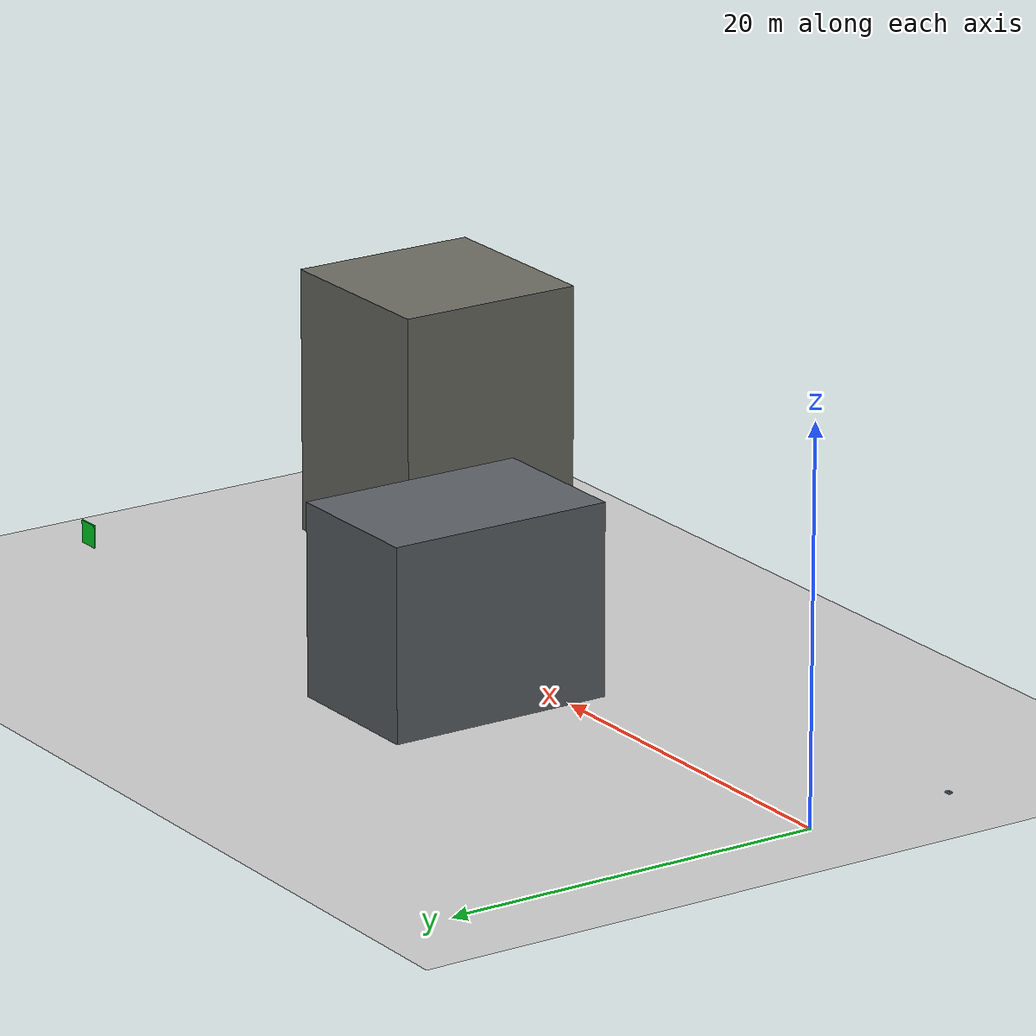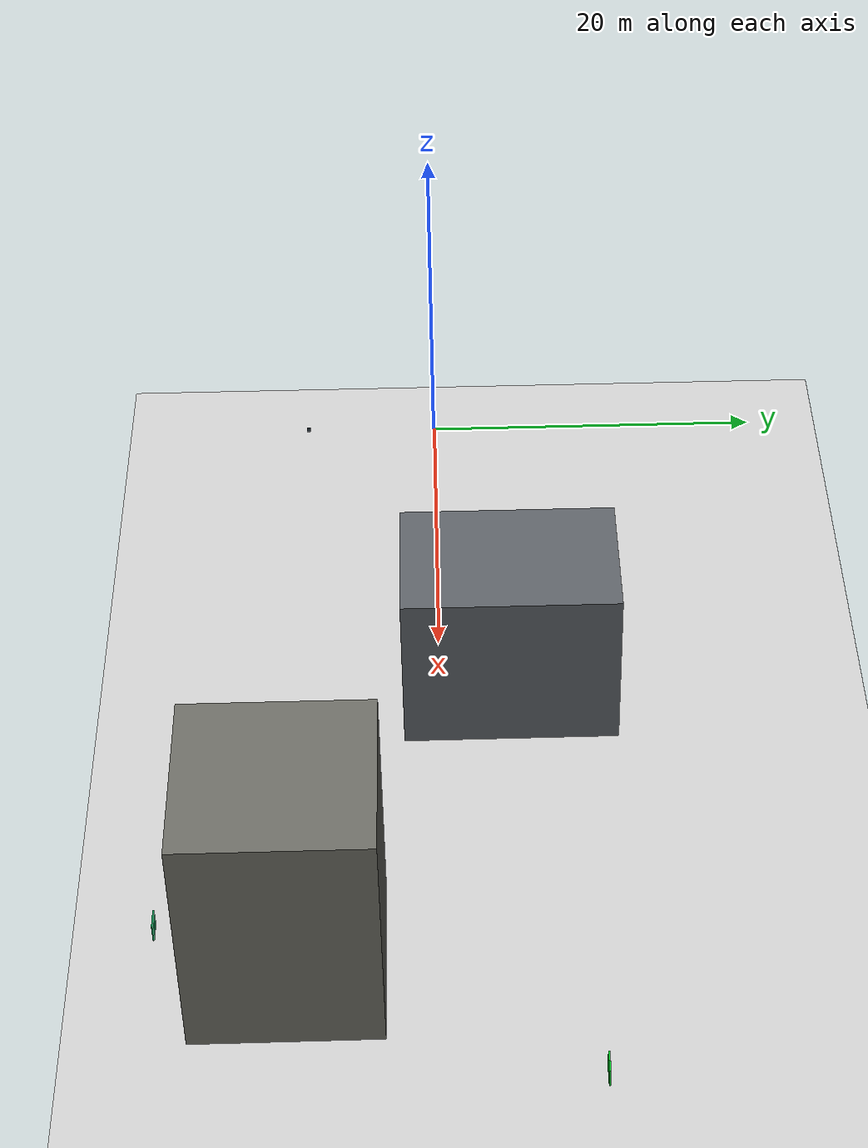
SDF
<?xml version="1.0"?>
<sdf version="1.10">
  <world name="jneo_urban_observation">
    <gravity>0 0 -9.80665</gravity>
    <scene>
      <ambient>0.38 0.40 0.42 1</ambient>
      <background>0.68 0.72 0.76 1</background>
      <shadows>true</shadows>
    </scene>
    <physics name="urban_physics" type="ode">
      <max_step_size>0.004</max_step_size>
      <real_time_factor>1.0</real_time_factor>
    </physics>
    <light name="sun_low" type="directional">
      <diffuse>0.8 0.76 0.65 1</diffuse>
      <direction>-0.65 0.1 -1</direction>
    </light>
    <model name="ground">
      <static>true</static>
      <link name="ground_link">
        <collision name="collision">
          <geometry>
            <plane>
              <normal>0 0 1</normal>
              <size>260 260</size>
            </plane>
          </geometry>
        </collision>
        <visual name="visual">
          <geometry>
            <plane>
              <normal>0 0 1</normal>
              <size>260 260</size>
            </plane>
          </geometry>
        </visual>
      </link>
    </model>
    <model name="building_block_a">
      <pose>24 4 5 0 0 0</pose>
      <static>true</static>
      <link name="block">
        <collision name="collision">
          <geometry><box><size>8 12 10</size></box></geometry>
        </collision>
        <visual name="visual">
          <geometry><box><size>8 12 10</size></box></geometry>
          <material><ambient>0.36 0.38 0.40 1</ambient><diffuse>0.36 0.38 0.40 1</diffuse></material>
        </visual>
      </link>
    </model>
    <model name="building_block_b">
      <pose>44 -8 7 0 0 0</pose>
      <static>true</static>
      <link name="block">
        <collision name="collision">
          <geometry><box><size>10 10 14</size></box></geometry>
        </collision>
        <visual name="visual">
          <geometry><box><size>10 10 14</size></box></geometry>
          <material><ambient>0.42 0.42 0.39 1</ambient><diffuse>0.42 0.42 0.39 1</diffuse></material>
        </visual>
      </link>
    </model>
    <include><name>uav_1</name><pose>0 -8 0.15 0 0 0</pose><uri>model://jneo-fpv-copter</uri></include>
    <include><name>target_1</name><pose>52 8 1.0 0 0 3.14159</pose><uri>model://virtual-observation-target</uri></include>
    <include><name>decoy_1</name><pose>42 -15 1.0 0 0 3.14159</pose><uri>model://visual-decoy</uri></include>
    <!-- Evaluator-only metadata: building_block_a occludes target_1 until UAV moves laterally. -->
  </world>
</sdf>

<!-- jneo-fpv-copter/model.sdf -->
<sdf version="1.10">
  <model name="jneo-fpv-copter">
    <pose>0 0 0.15 0 0 0</pose>
    <link name="base_link">
      <inertial>
        <mass>1.45</mass>
        <inertia>
          <ixx>0.029</ixx>
          <iyy>0.029</iyy>
          <izz>0.055</izz>
        </inertia>
      </inertial>
      <collision name="body_collision">
        <geometry>
          <box>
            <size>0.35 0.22 0.08</size>
          </box>
        </geometry>
      </collision>
      <visual name="body_visual">
        <geometry>
          <box>
            <size>0.35 0.22 0.08</size>
          </box>
        </geometry>
        <material>
          <ambient>0.05 0.08 0.10 1</ambient>
          <diffuse>0.05 0.08 0.10 1</diffuse>
        </material>
      </visual>
      <sensor name="fpv_camera" type="camera">
        <pose>0.22 0 0.03 0 0 0</pose>
        <camera>
          <horizontal_fov>1.22173</horizontal_fov>
          <image>
            <width>960</width>
            <height>540</height>
            <format>R8G8B8</format>
          </image>
          <clip>
            <near>0.05</near>
            <far>500</far>
          </clip>
        </camera>
        <always_on>true</always_on>
        <update_rate>30</update_rate>
        <topic>fpv/image</topic>
      </sensor>
      <sensor name="imu" type="imu">
        <always_on>true</always_on>
        <update_rate>200</update_rate>
        <topic>imu</topic>
      </sensor>
      <sensor name="range" type="gpu_lidar">
        <pose>0.18 0 -0.02 0 0 0</pose>
        <topic>range/scan</topic>
        <update_rate>15</update_rate>
        <lidar>
          <scan>
            <horizontal>
              <samples>64</samples>
              <min_angle>-0.6</min_angle>
              <max_angle>0.6</max_angle>
            </horizontal>
          </scan>
          <range>
            <min>0.2</min>
            <max>30.0</max>
          </range>
        </lidar>
      </sensor>
    </link>
    <plugin filename="ArduPilotPlugin" name="ardupilot_gazebo::ArduPilotPlugin">
      <fdm_addr>127.0.0.1</fdm_addr>
      <fdm_port_in>9002</fdm_port_in>
      <fdm_port_out>9003</fdm_port_out>
      <modelXYZToAirplaneXForwardZDown>0 0 0 3.141593 0 0</modelXYZToAirplaneXForwardZDown>
      <gazeboXYZToNED>0 0 0 3.141593 0 1.570796</gazeboXYZToNED>
    </plugin>
  </model>
</sdf>

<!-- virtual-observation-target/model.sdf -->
<sdf version="1.10">
  <model name="virtual-observation-target">
    <static>true</static>
    <link name="target_panel">
      <visual name="target_pattern">
        <geometry>
          <box>
            <size>1.2 0.08 1.2</size>
          </box>
        </geometry>
        <material>
          <ambient>0.0 0.85 0.15 1</ambient>
          <diffuse>0.0 0.85 0.15 1</diffuse>
          <specular>0.8 0.8 0.8 1</specular>
        </material>
      </visual>
      <collision name="target_collision">
        <geometry>
          <box>
            <size>1.2 0.08 1.2</size>
          </box>
        </geometry>
      </collision>
    </link>
  </model>
</sdf>

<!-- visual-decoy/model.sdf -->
<sdf version="1.10">
  <model name="visual-decoy">
    <static>true</static>
    <link name="decoy_panel">
      <visual name="decoy_pattern">
        <geometry>
          <box>
            <size>1.1 0.08 1.1</size>
          </box>
        </geometry>
        <material>
          <ambient>0.0 0.55 0.28 1</ambient>
          <diffuse>0.0 0.55 0.28 1</diffuse>
        </material>
      </visual>
      <collision name="decoy_collision">
        <geometry>
          <box>
            <size>1.1 0.08 1.1</size>
          </box>
        </geometry>
      </collision>
    </link>
  </model>
</sdf>
